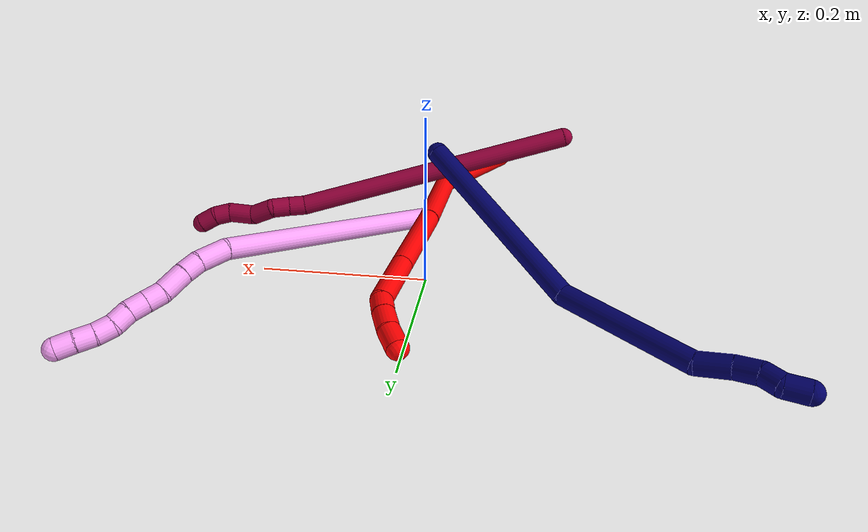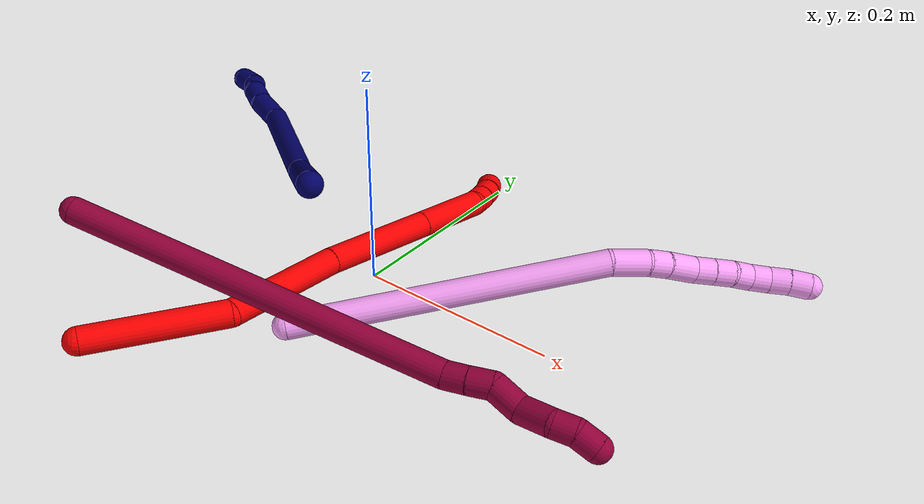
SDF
<sdf version="1.7">
 <world name="default">
  <model name="2">
   <static>0</static>
   <link name="2">
    <collision name="collision-cylinder-e_1_1_4">
     <pose>0.009427 0.008392 -0.062593 -3.00832 0.148171 -1.6769</pose>
     <geometry><cylinder><radius>0.0125</radius><length>0.127705</length></cylinder></geometry>
     <surface>
      <friction><ode><mu>1.16</mu><mu2>1.16</mu2><slip1>0</slip1><slip2>0</slip2></ode></friction>
      <contact><ode><kp>1e+06</kp><kd>1</kd><max_vel>0</max_vel><min_depth>0.001</min_depth></ode></contact>
     </surface>
    </collision>
    <visual name="visual-cylinder-e_1_1_4">
     <pose>0.009427 0.008392 -0.062593 -3.00832 0.148171 -1.6769</pose>
     <geometry><cylinder><radius>0.0125</radius><length>0.127705</length></cylinder></geometry>
     <material><ambient>1 0 0 1</ambient></material>
    </visual>
    <collision name="collision-cylinder-e_2_4_5">
     <pose>0.023382 0.050844 -0.171923 -2.51183 0.078157 -0.238931</pose>
     <geometry><cylinder><radius>0.0125</radius><length>0.116016</length></cylinder></geometry>
     <surface>
      <friction><ode><mu>1.16</mu><mu2>1.16</mu2><slip1>0</slip1><slip2>0</slip2></ode></friction>
      <contact><ode><kp>1e+06</kp><kd>1</kd><max_vel>0</max_vel><min_depth>0.001</min_depth></ode></contact>
     </surface>
    </collision>
    <visual name="visual-cylinder-e_2_4_5">
     <pose>0.023382 0.050844 -0.171923 -2.51183 0.078157 -0.238931</pose>
     <geometry><cylinder><radius>0.0125</radius><length>0.116016</length></cylinder></geometry>
     <material><ambient>1 0 0 1</ambient></material>
    </visual>
    <collision name="collision-cylinder-e_3_5_6">
     <pose>0.030295 0.11444 -0.26682 -2.59145 0.042173 -0.149177</pose>
     <geometry><cylinder><radius>0.0125</radius><length>0.113092</length></cylinder></geometry>
     <surface>
      <friction><ode><mu>1.16</mu><mu2>1.16</mu2><slip1>0</slip1><slip2>0</slip2></ode></friction>
      <contact><ode><kp>1e+06</kp><kd>1</kd><max_vel>0</max_vel><min_depth>0.001</min_depth></ode></contact>
     </surface>
    </collision>
    <visual name="visual-cylinder-e_3_5_6">
     <pose>0.030295 0.11444 -0.26682 -2.59145 0.042173 -0.149177</pose>
     <geometry><cylinder><radius>0.0125</radius><length>0.113092</length></cylinder></geometry>
     <material><ambient>1 0 0 1</ambient></material>
    </visual>
    <collision name="collision-cylinder-e_4_6_7">
     <pose>0.034171 0.162978 -0.345756 -2.58846 0.041204 -0.144932</pose>
     <geometry><cylinder><radius>0.0125</radius><length>0.0724</length></cylinder></geometry>
     <surface>
      <friction><ode><mu>1.16</mu><mu2>1.16</mu2><slip1>0</slip1><slip2>0</slip2></ode></friction>
      <contact><ode><kp>1e+06</kp><kd>1</kd><max_vel>0</max_vel><min_depth>0.001</min_depth></ode></contact>
     </surface>
    </collision>
    <visual name="visual-cylinder-e_4_6_7">
     <pose>0.034171 0.162978 -0.345756 -2.58846 0.041204 -0.144932</pose>
     <geometry><cylinder><radius>0.0125</radius><length>0.0724</length></cylinder></geometry>
     <material><ambient>1 0 0 1</ambient></material>
    </visual>
    <collision name="collision-cylinder-e_5_7_8">
     <pose>0.033943 0.190082 -0.382383 -2.19621 -0.170332 0.330856</pose>
     <geometry><cylinder><radius>0.0125</radius><length>0.020282</length></cylinder></geometry>
     <surface>
      <friction><ode><mu>1.16</mu><mu2>1.16</mu2><slip1>0</slip1><slip2>0</slip2></ode></friction>
      <contact><ode><kp>1e+06</kp><kd>1</kd><max_vel>0</max_vel><min_depth>0.001</min_depth></ode></contact>
     </surface>
    </collision>
    <visual name="visual-cylinder-e_5_7_8">
     <pose>0.033943 0.190082 -0.382383 -2.19621 -0.170332 0.330856</pose>
     <geometry><cylinder><radius>0.0125</radius><length>0.020282</length></cylinder></geometry>
     <material><ambient>1 0 0 1</ambient></material>
    </visual>
    <collision name="collision-cylinder-e_6_8_9">
     <pose>0.029641 0.208846 -0.394522 -2.10367 -0.20573 0.357597</pose>
     <geometry><cylinder><radius>0.0125</radius><length>0.025289</length></cylinder></geometry>
     <surface>
      <friction><ode><mu>1.16</mu><mu2>1.16</mu2><slip1>0</slip1><slip2>0</slip2></ode></friction>
      <contact><ode><kp>1e+06</kp><kd>1</kd><max_vel>0</max_vel><min_depth>0.001</min_depth></ode></contact>
     </surface>
    </collision>
    <visual name="visual-cylinder-e_6_8_9">
     <pose>0.029641 0.208846 -0.394522 -2.10367 -0.20573 0.357597</pose>
     <geometry><cylinder><radius>0.0125</radius><length>0.025289</length></cylinder></geometry>
     <material><ambient>1 0 0 1</ambient></material>
    </visual>
    <collision name="collision-cylinder-e_7_9_2">
     <pose>0.023467 0.230712 -0.405341 -1.95513 -0.288838 0.424882</pose>
     <geometry><cylinder><radius>0.0125</radius><length>0.025215</length></cylinder></geometry>
     <surface>
      <friction><ode><mu>1.16</mu><mu2>1.16</mu2><slip1>0</slip1><slip2>0</slip2></ode></friction>
      <contact><ode><kp>1e+06</kp><kd>1</kd><max_vel>0</max_vel><min_depth>0.001</min_depth></ode></contact>
     </surface>
    </collision>
    <visual name="visual-cylinder-e_7_9_2">
     <pose>0.023467 0.230712 -0.405341 -1.95513 -0.288838 0.424882</pose>
     <geometry><cylinder><radius>0.0125</radius><length>0.025215</length></cylinder></geometry>
     <material><ambient>1 0 0 1</ambient></material>
    </visual>
    <collision name="collision-sphere-2">
     <pose>0.019875 0.241915 -0.409872 0 -0 0</pose>
     <geometry><sphere><radius>0.0125</radius></sphere></geometry>
     <surface>
      <friction><ode><mu>1.16</mu><mu2>1.16</mu2><slip1>0</slip1><slip2>0</slip2></ode></friction>
      <contact><ode><kp>1e+06</kp><kd>1</kd><max_vel>0</max_vel><min_depth>0.001</min_depth></ode></contact>
     </surface>
    </collision>
    <visual name="visual-sphere-2">
     <pose>0.019875 0.241915 -0.409872 0 -0 0</pose>
     <geometry><sphere><radius>0.0125</radius></sphere></geometry>
     <material><ambient>1 0 0 1</ambient></material>
    </visual>
    <collision name="collision-sphere-9">
     <pose>0.027058 0.219508 -0.40081 0 -0 0</pose>
     <geometry><sphere><radius>0.0125</radius></sphere></geometry>
     <surface>
      <friction><ode><mu>1.16</mu><mu2>1.16</mu2><slip1>0</slip1><slip2>0</slip2></ode></friction>
      <contact><ode><kp>1e+06</kp><kd>1</kd><max_vel>0</max_vel><min_depth>0.001</min_depth></ode></contact>
     </surface>
    </collision>
    <visual name="visual-sphere-9">
     <pose>0.027058 0.219508 -0.40081 0 -0 0</pose>
     <geometry><sphere><radius>0.0125</radius></sphere></geometry>
     <material><ambient>1 0 0 1</ambient></material>
    </visual>
    <collision name="collision-sphere-4">
     <pose>0.018853 0.016784 -0.125186 0 -0 0</pose>
     <geometry><sphere><radius>0.0125</radius></sphere></geometry>
     <surface>
      <friction><ode><mu>1.16</mu><mu2>1.16</mu2><slip1>0</slip1><slip2>0</slip2></ode></friction>
      <contact><ode><kp>1e+06</kp><kd>1</kd><max_vel>0</max_vel><min_depth>0.001</min_depth></ode></contact>
     </surface>
    </collision>
    <visual name="visual-sphere-4">
     <pose>0.018853 0.016784 -0.125186 0 -0 0</pose>
     <geometry><sphere><radius>0.0125</radius></sphere></geometry>
     <material><ambient>1 0 0 1</ambient></material>
    </visual>
    <collision name="collision-sphere-1">
     <geometry><sphere><radius>0.0125</radius></sphere></geometry>
     <surface>
      <friction><ode><mu>1.16</mu><mu2>1.16</mu2><slip1>0</slip1><slip2>0</slip2></ode></friction>
      <contact><ode><kp>1e+06</kp><kd>1</kd><max_vel>0</max_vel><min_depth>0.001</min_depth></ode></contact>
     </surface>
    </collision>
    <visual name="visual-sphere-1">
     <geometry><sphere><radius>0.0125</radius></sphere></geometry>
     <material><ambient>1 0 0 1</ambient></material>
    </visual>
    <collision name="collision-sphere-8">
     <pose>0.032224 0.198185 -0.388234 0 -0 0</pose>
     <geometry><sphere><radius>0.0125</radius></sphere></geometry>
     <surface>
      <friction><ode><mu>1.16</mu><mu2>1.16</mu2><slip1>0</slip1><slip2>0</slip2></ode></friction>
      <contact><ode><kp>1e+06</kp><kd>1</kd><max_vel>0</max_vel><min_depth>0.001</min_depth></ode></contact>
     </surface>
    </collision>
    <visual name="visual-sphere-8">
     <pose>0.032224 0.198185 -0.388234 0 -0 0</pose>
     <geometry><sphere><radius>0.0125</radius></sphere></geometry>
     <material><ambient>1 0 0 1</ambient></material>
    </visual>
    <collision name="collision-sphere-5">
     <pose>0.027911 0.084903 -0.21866 0 -0 0</pose>
     <geometry><sphere><radius>0.0125</radius></sphere></geometry>
     <surface>
      <friction><ode><mu>1.16</mu><mu2>1.16</mu2><slip1>0</slip1><slip2>0</slip2></ode></friction>
      <contact><ode><kp>1e+06</kp><kd>1</kd><max_vel>0</max_vel><min_depth>0.001</min_depth></ode></contact>
     </surface>
    </collision>
    <visual name="visual-sphere-5">
     <pose>0.027911 0.084903 -0.21866 0 -0 0</pose>
     <geometry><sphere><radius>0.0125</radius></sphere></geometry>
     <material><ambient>1 0 0 1</ambient></material>
    </visual>
    <collision name="collision-sphere-6">
     <pose>0.032679 0.143976 -0.31498 0 -0 0</pose>
     <geometry><sphere><radius>0.0125</radius></sphere></geometry>
     <surface>
      <friction><ode><mu>1.16</mu><mu2>1.16</mu2><slip1>0</slip1><slip2>0</slip2></ode></friction>
      <contact><ode><kp>1e+06</kp><kd>1</kd><max_vel>0</max_vel><min_depth>0.001</min_depth></ode></contact>
     </surface>
    </collision>
    <visual name="visual-sphere-6">
     <pose>0.032679 0.143976 -0.31498 0 -0 0</pose>
     <geometry><sphere><radius>0.0125</radius></sphere></geometry>
     <material><ambient>1 0 0 1</ambient></material>
    </visual>
    <collision name="collision-sphere-7">
     <pose>0.035662 0.18198 -0.376532 0 -0 0</pose>
     <geometry><sphere><radius>0.0125</radius></sphere></geometry>
     <surface>
      <friction><ode><mu>1.16</mu><mu2>1.16</mu2><slip1>0</slip1><slip2>0</slip2></ode></friction>
      <contact><ode><kp>1e+06</kp><kd>1</kd><max_vel>0</max_vel><min_depth>0.001</min_depth></ode></contact>
     </surface>
    </collision>
    <visual name="visual-sphere-7">
     <pose>0.035662 0.18198 -0.376532 0 -0 0</pose>
     <geometry><sphere><radius>0.0125</radius></sphere></geometry>
     <material><ambient>1 0 0 1</ambient></material>
    </visual>
    <inertial>
     <pose>0.023693 0.093333 -0.222201 0 -0 0</pose>
     <mass>0.5</mass>
     <inertia>
      <ixx>4.8e-05</ixx>
      <ixy>0</ixy>
      <ixz>0</ixz>
      <iyy>-0.000428</iyy>
      <iyz>0</iyz>
      <izz>-0.000265</izz>
     </inertia>
    </inertial>
   </link>
   <pose>-0.068901 -0.287499 0.061838 0.213977 -1.38481 0.671209</pose>
  </model>
  <model name="4">
   <static>0</static>
   <link name="4">
    <collision name="collision-cylinder-e_1_1_4">
     <pose>0.029462 0.093714 0.108887 -0.710648 0.202272 -0.075279</pose>
     <geometry><cylinder><radius>0.0125</radius><length>0.293302</length></cylinder></geometry>
     <surface>
      <friction><ode><mu>1.16</mu><mu2>1.16</mu2><slip1>0</slip1><slip2>0</slip2></ode></friction>
      <contact><ode><kp>1e+06</kp><kd>1</kd><max_vel>0</max_vel><min_depth>0.001</min_depth></ode></contact>
     </surface>
    </collision>
    <visual name="visual-cylinder-e_1_1_4">
     <pose>0.029462 0.093714 0.108887 -0.710648 0.202272 -0.075279</pose>
     <geometry><cylinder><radius>0.0125</radius><length>0.293302</length></cylinder></geometry>
     <material><ambient>1 0.65098 0.996078 1</ambient></material>
    </visual>
    <collision name="collision-cylinder-e_2_4_5">
     <pose>0.066325 0.199395 0.228313 -0.848726 0.434549 -0.198828</pose>
     <geometry><cylinder><radius>0.0125</radius><length>0.035162</length></cylinder></geometry>
     <surface>
      <friction><ode><mu>1.16</mu><mu2>1.16</mu2><slip1>0</slip1><slip2>0</slip2></ode></friction>
      <contact><ode><kp>1e+06</kp><kd>1</kd><max_vel>0</max_vel><min_depth>0.001</min_depth></ode></contact>
     </surface>
    </collision>
    <visual name="visual-cylinder-e_2_4_5">
     <pose>0.066325 0.199395 0.228313 -0.848726 0.434549 -0.198828</pose>
     <geometry><cylinder><radius>0.0125</radius><length>0.035162</length></cylinder></geometry>
     <material><ambient>1 0.65098 0.996078 1</ambient></material>
    </visual>
    <collision name="collision-cylinder-e_3_5_6">
     <pose>0.079155 0.219052 0.243186 -1.05768 0.551381 -0.327661</pose>
     <geometry><cylinder><radius>0.0125</radius><length>0.020725</length></cylinder></geometry>
     <surface>
      <friction><ode><mu>1.16</mu><mu2>1.16</mu2><slip1>0</slip1><slip2>0</slip2></ode></friction>
      <contact><ode><kp>1e+06</kp><kd>1</kd><max_vel>0</max_vel><min_depth>0.001</min_depth></ode></contact>
     </surface>
    </collision>
    <visual name="visual-cylinder-e_3_5_6">
     <pose>0.079155 0.219052 0.243186 -1.05768 0.551381 -0.327661</pose>
     <geometry><cylinder><radius>0.0125</radius><length>0.020725</length></cylinder></geometry>
     <material><ambient>1 0.65098 0.996078 1</ambient></material>
    </visual>
    <collision name="collision-cylinder-e_4_6_7">
     <pose>0.09338 0.238165 0.252627 -1.15031 0.612743 -0.404527</pose>
     <geometry><cylinder><radius>0.0125</radius><length>0.030591</length></cylinder></geometry>
     <surface>
      <friction><ode><mu>1.16</mu><mu2>1.16</mu2><slip1>0</slip1><slip2>0</slip2></ode></friction>
      <contact><ode><kp>1e+06</kp><kd>1</kd><max_vel>0</max_vel><min_depth>0.001</min_depth></ode></contact>
     </surface>
    </collision>
    <visual name="visual-cylinder-e_4_6_7">
     <pose>0.09338 0.238165 0.252627 -1.15031 0.612743 -0.404527</pose>
     <geometry><cylinder><radius>0.0125</radius><length>0.030591</length></cylinder></geometry>
     <material><ambient>1 0.65098 0.996078 1</ambient></material>
    </visual>
    <collision name="collision-cylinder-e_5_7_8">
     <pose>0.10729 0.256202 0.263402 -0.862301 0.530863 -0.248814</pose>
     <geometry><cylinder><radius>0.0125</radius><length>0.0202</length></cylinder></geometry>
     <surface>
      <friction><ode><mu>1.16</mu><mu2>1.16</mu2><slip1>0</slip1><slip2>0</slip2></ode></friction>
      <contact><ode><kp>1e+06</kp><kd>1</kd><max_vel>0</max_vel><min_depth>0.001</min_depth></ode></contact>
     </surface>
    </collision>
    <visual name="visual-cylinder-e_5_7_8">
     <pose>0.10729 0.256202 0.263402 -0.862301 0.530863 -0.248814</pose>
     <geometry><cylinder><radius>0.0125</radius><length>0.0202</length></cylinder></geometry>
     <material><ambient>1 0.65098 0.996078 1</ambient></material>
    </visual>
    <collision name="collision-cylinder-e_6_8_9">
     <pose>0.117531 0.26943 0.274554 -0.878442 0.538019 -0.257622</pose>
     <geometry><cylinder><radius>0.0125</radius><length>0.020011</length></cylinder></geometry>
     <surface>
      <friction><ode><mu>1.16</mu><mu2>1.16</mu2><slip1>0</slip1><slip2>0</slip2></ode></friction>
      <contact><ode><kp>1e+06</kp><kd>1</kd><max_vel>0</max_vel><min_depth>0.001</min_depth></ode></contact>
     </surface>
    </collision>
    <visual name="visual-cylinder-e_6_8_9">
     <pose>0.117531 0.26943 0.274554 -0.878442 0.538019 -0.257622</pose>
     <geometry><cylinder><radius>0.0125</radius><length>0.020011</length></cylinder></geometry>
     <material><ambient>1 0.65098 0.996078 1</ambient></material>
    </visual>
    <collision name="collision-cylinder-e_7_9_10">
     <pose>0.128496 0.283408 0.283466 -1.13523 0.623145 -0.405069</pose>
     <geometry><cylinder><radius>0.0125</radius><length>0.020006</length></cylinder></geometry>
     <surface>
      <friction><ode><mu>1.16</mu><mu2>1.16</mu2><slip1>0</slip1><slip2>0</slip2></ode></friction>
      <contact><ode><kp>1e+06</kp><kd>1</kd><max_vel>0</max_vel><min_depth>0.001</min_depth></ode></contact>
     </surface>
    </collision>
    <visual name="visual-cylinder-e_7_9_10">
     <pose>0.128496 0.283408 0.283466 -1.13523 0.623145 -0.405069</pose>
     <geometry><cylinder><radius>0.0125</radius><length>0.020006</length></cylinder></geometry>
     <material><ambient>1 0.65098 0.996078 1</ambient></material>
    </visual>
    <collision name="collision-cylinder-e_8_10_11">
     <pose>0.139593 0.296751 0.292943 -0.77955 0.553812 -0.232448</pose>
     <geometry><cylinder><radius>0.0125</radius><length>0.020002</length></cylinder></geometry>
     <surface>
      <friction><ode><mu>1.16</mu><mu2>1.16</mu2><slip1>0</slip1><slip2>0</slip2></ode></friction>
      <contact><ode><kp>1e+06</kp><kd>1</kd><max_vel>0</max_vel><min_depth>0.001</min_depth></ode></contact>
     </surface>
    </collision>
    <visual name="visual-cylinder-e_8_10_11">
     <pose>0.139593 0.296751 0.292943 -0.77955 0.553812 -0.232448</pose>
     <geometry><cylinder><radius>0.0125</radius><length>0.020002</length></cylinder></geometry>
     <material><ambient>1 0.65098 0.996078 1</ambient></material>
    </visual>
    <collision name="collision-cylinder-e_9_11_12">
     <pose>0.149545 0.307795 0.306228 -0.610702 0.488437 -0.156774</pose>
     <geometry><cylinder><radius>0.0125</radius><length>0.02</length></cylinder></geometry>
     <surface>
      <friction><ode><mu>1.16</mu><mu2>1.16</mu2><slip1>0</slip1><slip2>0</slip2></ode></friction>
      <contact><ode><kp>1e+06</kp><kd>1</kd><max_vel>0</max_vel><min_depth>0.001</min_depth></ode></contact>
     </surface>
    </collision>
    <visual name="visual-cylinder-e_9_11_12">
     <pose>0.149545 0.307795 0.306228 -0.610702 0.488437 -0.156774</pose>
     <geometry><cylinder><radius>0.0125</radius><length>0.02</length></cylinder></geometry>
     <material><ambient>1 0.65098 0.996078 1</ambient></material>
    </visual>
    <collision name="collision-cylinder-e_10_12_2">
     <pose>0.159735 0.317347 0.320508 -0.567164 0.581941 -0.174112</pose>
     <geometry><cylinder><radius>0.0125</radius><length>0.020001</length></cylinder></geometry>
     <surface>
      <friction><ode><mu>1.16</mu><mu2>1.16</mu2><slip1>0</slip1><slip2>0</slip2></ode></friction>
      <contact><ode><kp>1e+06</kp><kd>1</kd><max_vel>0</max_vel><min_depth>0.001</min_depth></ode></contact>
     </surface>
    </collision>
    <visual name="visual-cylinder-e_10_12_2">
     <pose>0.159735 0.317347 0.320508 -0.567164 0.581941 -0.174112</pose>
     <geometry><cylinder><radius>0.0125</radius><length>0.020001</length></cylinder></geometry>
     <material><ambient>1 0.65098 0.996078 1</ambient></material>
    </visual>
    <collision name="collision-sphere-2">
     <pose>0.165231 0.321835 0.327555 0 -0 0</pose>
     <geometry><sphere><radius>0.0125</radius></sphere></geometry>
     <surface>
      <friction><ode><mu>1.16</mu><mu2>1.16</mu2><slip1>0</slip1><slip2>0</slip2></ode></friction>
      <contact><ode><kp>1e+06</kp><kd>1</kd><max_vel>0</max_vel><min_depth>0.001</min_depth></ode></contact>
     </surface>
    </collision>
    <visual name="visual-sphere-2">
     <pose>0.165231 0.321835 0.327555 0 -0 0</pose>
     <geometry><sphere><radius>0.0125</radius></sphere></geometry>
     <material><ambient>1 0.65098 0.996078 1</ambient></material>
    </visual>
    <collision name="collision-sphere-12">
     <pose>0.154238 0.312859 0.313462 0 -0 0</pose>
     <geometry><sphere><radius>0.0125</radius></sphere></geometry>
     <surface>
      <friction><ode><mu>1.16</mu><mu2>1.16</mu2><slip1>0</slip1><slip2>0</slip2></ode></friction>
      <contact><ode><kp>1e+06</kp><kd>1</kd><max_vel>0</max_vel><min_depth>0.001</min_depth></ode></contact>
     </surface>
    </collision>
    <visual name="visual-sphere-12">
     <pose>0.154238 0.312859 0.313462 0 -0 0</pose>
     <geometry><sphere><radius>0.0125</radius></sphere></geometry>
     <material><ambient>1 0.65098 0.996078 1</ambient></material>
    </visual>
    <collision name="collision-sphere-11">
     <pose>0.144853 0.302731 0.298993 0 -0 0</pose>
     <geometry><sphere><radius>0.0125</radius></sphere></geometry>
     <surface>
      <friction><ode><mu>1.16</mu><mu2>1.16</mu2><slip1>0</slip1><slip2>0</slip2></ode></friction>
      <contact><ode><kp>1e+06</kp><kd>1</kd><max_vel>0</max_vel><min_depth>0.001</min_depth></ode></contact>
     </surface>
    </collision>
    <visual name="visual-sphere-11">
     <pose>0.144853 0.302731 0.298993 0 -0 0</pose>
     <geometry><sphere><radius>0.0125</radius></sphere></geometry>
     <material><ambient>1 0.65098 0.996078 1</ambient></material>
    </visual>
    <collision name="collision-sphere-10">
     <pose>0.134333 0.290772 0.286893 0 -0 0</pose>
     <geometry><sphere><radius>0.0125</radius></sphere></geometry>
     <surface>
      <friction><ode><mu>1.16</mu><mu2>1.16</mu2><slip1>0</slip1><slip2>0</slip2></ode></friction>
      <contact><ode><kp>1e+06</kp><kd>1</kd><max_vel>0</max_vel><min_depth>0.001</min_depth></ode></contact>
     </surface>
    </collision>
    <visual name="visual-sphere-10">
     <pose>0.134333 0.290772 0.286893 0 -0 0</pose>
     <geometry><sphere><radius>0.0125</radius></sphere></geometry>
     <material><ambient>1 0.65098 0.996078 1</ambient></material>
    </visual>
    <collision name="collision-sphere-9">
     <pose>0.122658 0.276043 0.280039 0 -0 0</pose>
     <geometry><sphere><radius>0.0125</radius></sphere></geometry>
     <surface>
      <friction><ode><mu>1.16</mu><mu2>1.16</mu2><slip1>0</slip1><slip2>0</slip2></ode></friction>
      <contact><ode><kp>1e+06</kp><kd>1</kd><max_vel>0</max_vel><min_depth>0.001</min_depth></ode></contact>
     </surface>
    </collision>
    <visual name="visual-sphere-9">
     <pose>0.122658 0.276043 0.280039 0 -0 0</pose>
     <geometry><sphere><radius>0.0125</radius></sphere></geometry>
     <material><ambient>1 0.65098 0.996078 1</ambient></material>
    </visual>
    <collision name="collision-sphere-4">
     <pose>0.058923 0.187428 0.217773 0 -0 0</pose>
     <geometry><sphere><radius>0.0125</radius></sphere></geometry>
     <surface>
      <friction><ode><mu>1.16</mu><mu2>1.16</mu2><slip1>0</slip1><slip2>0</slip2></ode></friction>
      <contact><ode><kp>1e+06</kp><kd>1</kd><max_vel>0</max_vel><min_depth>0.001</min_depth></ode></contact>
     </surface>
    </collision>
    <visual name="visual-sphere-4">
     <pose>0.058923 0.187428 0.217773 0 -0 0</pose>
     <geometry><sphere><radius>0.0125</radius></sphere></geometry>
     <material><ambient>1 0.65098 0.996078 1</ambient></material>
    </visual>
    <collision name="collision-sphere-1">
     <geometry><sphere><radius>0.0125</radius></sphere></geometry>
     <surface>
      <friction><ode><mu>1.16</mu><mu2>1.16</mu2><slip1>0</slip1><slip2>0</slip2></ode></friction>
      <contact><ode><kp>1e+06</kp><kd>1</kd><max_vel>0</max_vel><min_depth>0.001</min_depth></ode></contact>
     </surface>
    </collision>
    <visual name="visual-sphere-1">
     <geometry><sphere><radius>0.0125</radius></sphere></geometry>
     <material><ambient>1 0.65098 0.996078 1</ambient></material>
    </visual>
    <collision name="collision-sphere-8">
     <pose>0.112404 0.262816 0.26907 0 -0 0</pose>
     <geometry><sphere><radius>0.0125</radius></sphere></geometry>
     <surface>
      <friction><ode><mu>1.16</mu><mu2>1.16</mu2><slip1>0</slip1><slip2>0</slip2></ode></friction>
      <contact><ode><kp>1e+06</kp><kd>1</kd><max_vel>0</max_vel><min_depth>0.001</min_depth></ode></contact>
     </surface>
    </collision>
    <visual name="visual-sphere-8">
     <pose>0.112404 0.262816 0.26907 0 -0 0</pose>
     <geometry><sphere><radius>0.0125</radius></sphere></geometry>
     <material><ambient>1 0.65098 0.996078 1</ambient></material>
    </visual>
    <collision name="collision-sphere-5">
     <pose>0.073726 0.211362 0.238853 0 -0 0</pose>
     <geometry><sphere><radius>0.0125</radius></sphere></geometry>
     <surface>
      <friction><ode><mu>1.16</mu><mu2>1.16</mu2><slip1>0</slip1><slip2>0</slip2></ode></friction>
      <contact><ode><kp>1e+06</kp><kd>1</kd><max_vel>0</max_vel><min_depth>0.001</min_depth></ode></contact>
     </surface>
    </collision>
    <visual name="visual-sphere-5">
     <pose>0.073726 0.211362 0.238853 0 -0 0</pose>
     <geometry><sphere><radius>0.0125</radius></sphere></geometry>
     <material><ambient>1 0.65098 0.996078 1</ambient></material>
    </visual>
    <collision name="collision-sphere-6">
     <pose>0.084583 0.226742 0.247519 0 -0 0</pose>
     <geometry><sphere><radius>0.0125</radius></sphere></geometry>
     <surface>
      <friction><ode><mu>1.16</mu><mu2>1.16</mu2><slip1>0</slip1><slip2>0</slip2></ode></friction>
      <contact><ode><kp>1e+06</kp><kd>1</kd><max_vel>0</max_vel><min_depth>0.001</min_depth></ode></contact>
     </surface>
    </collision>
    <visual name="visual-sphere-6">
     <pose>0.084583 0.226742 0.247519 0 -0 0</pose>
     <geometry><sphere><radius>0.0125</radius></sphere></geometry>
     <material><ambient>1 0.65098 0.996078 1</ambient></material>
    </visual>
    <collision name="collision-sphere-7">
     <pose>0.102177 0.249588 0.257735 0 -0 0</pose>
     <geometry><sphere><radius>0.0125</radius></sphere></geometry>
     <surface>
      <friction><ode><mu>1.16</mu><mu2>1.16</mu2><slip1>0</slip1><slip2>0</slip2></ode></friction>
      <contact><ode><kp>1e+06</kp><kd>1</kd><max_vel>0</max_vel><min_depth>0.001</min_depth></ode></contact>
     </surface>
    </collision>
    <visual name="visual-sphere-7">
     <pose>0.102177 0.249588 0.257735 0 -0 0</pose>
     <geometry><sphere><radius>0.0125</radius></sphere></geometry>
     <material><ambient>1 0.65098 0.996078 1</ambient></material>
    </visual>
    <inertial>
     <pose>0.063076 0.161997 0.175226 0 -0 0</pose>
     <mass>0.5</mass>
     <inertia>
      <ixx>0.001934</ixx>
      <ixy>0</ixy>
      <ixz>0</ixz>
      <iyy>0.001497</iyy>
      <iyz>0</iyz>
      <izz>-0.001772</izz>
     </inertia>
    </inertial>
   </link>
   <pose>0.015307 -0.133595 0.025794 -0.099006 1.10141 0.027024</pose>
  </model>
  <model name="7">
   <static>0</static>
   <link name="7">
    <collision name="collision-cylinder-e_1_1_4">
     <pose>-0.048902 0.003963 -0.106611 -3.10444 -0.429797 2.97177</pose>
     <geometry><cylinder><radius>0.0125</radius><length>0.234717</length></cylinder></geometry>
     <surface>
      <friction><ode><mu>1.16</mu><mu2>1.16</mu2><slip1>0</slip1><slip2>0</slip2></ode></friction>
      <contact><ode><kp>1e+06</kp><kd>1</kd><max_vel>0</max_vel><min_depth>0.001</min_depth></ode></contact>
     </surface>
    </collision>
    <visual name="visual-cylinder-e_1_1_4">
     <pose>-0.048902 0.003963 -0.106611 -3.10444 -0.429797 2.97177</pose>
     <geometry><cylinder><radius>0.0125</radius><length>0.234717</length></cylinder></geometry>
     <material><ambient>0.003922 0 0.403922 1</ambient></material>
    </visual>
    <collision name="collision-cylinder-e_2_4_5">
     <pose>-0.131003 0.039235 -0.277237 -2.68671 -0.435985 1.52695</pose>
     <geometry><cylinder><radius>0.0125</radius><length>0.157231</length></cylinder></geometry>
     <surface>
      <friction><ode><mu>1.16</mu><mu2>1.16</mu2><slip1>0</slip1><slip2>0</slip2></ode></friction>
      <contact><ode><kp>1e+06</kp><kd>1</kd><max_vel>0</max_vel><min_depth>0.001</min_depth></ode></contact>
     </surface>
    </collision>
    <visual name="visual-cylinder-e_2_4_5">
     <pose>-0.131003 0.039235 -0.277237 -2.68671 -0.435985 1.52695</pose>
     <geometry><cylinder><radius>0.0125</radius><length>0.157231</length></cylinder></geometry>
     <material><ambient>0.003922 0 0.403922 1</ambient></material>
    </visual>
    <collision name="collision-cylinder-e_3_5_6">
     <pose>-0.174925 0.082111 -0.350595 -2.25019 -0.624741 1.1888</pose>
     <geometry><cylinder><radius>0.0125</radius><length>0.036664</length></cylinder></geometry>
     <surface>
      <friction><ode><mu>1.16</mu><mu2>1.16</mu2><slip1>0</slip1><slip2>0</slip2></ode></friction>
      <contact><ode><kp>1e+06</kp><kd>1</kd><max_vel>0</max_vel><min_depth>0.001</min_depth></ode></contact>
     </surface>
    </collision>
    <visual name="visual-cylinder-e_3_5_6">
     <pose>-0.174925 0.082111 -0.350595 -2.25019 -0.624741 1.1888</pose>
     <geometry><cylinder><radius>0.0125</radius><length>0.036664</length></cylinder></geometry>
     <material><ambient>0.003922 0 0.403922 1</ambient></material>
    </visual>
    <collision name="collision-cylinder-e_4_6_7">
     <pose>-0.191466 0.101625 -0.368546 -2.39615 -0.46101 1.08114</pose>
     <geometry><cylinder><radius>0.0125</radius><length>0.026161</length></cylinder></geometry>
     <surface>
      <friction><ode><mu>1.16</mu><mu2>1.16</mu2><slip1>0</slip1><slip2>0</slip2></ode></friction>
      <contact><ode><kp>1e+06</kp><kd>1</kd><max_vel>0</max_vel><min_depth>0.001</min_depth></ode></contact>
     </surface>
    </collision>
    <visual name="visual-cylinder-e_4_6_7">
     <pose>-0.191466 0.101625 -0.368546 -2.39615 -0.46101 1.08114</pose>
     <geometry><cylinder><radius>0.0125</radius><length>0.026161</length></cylinder></geometry>
     <material><ambient>0.003922 0 0.403922 1</ambient></material>
    </visual>
    <collision name="collision-cylinder-e_5_7_8">
     <pose>-0.200412 0.113484 -0.386152 -2.73142 -0.308552 1.28394</pose>
     <geometry><cylinder><radius>0.0125</radius><length>0.020595</length></cylinder></geometry>
     <surface>
      <friction><ode><mu>1.16</mu><mu2>1.16</mu2><slip1>0</slip1><slip2>0</slip2></ode></friction>
      <contact><ode><kp>1e+06</kp><kd>1</kd><max_vel>0</max_vel><min_depth>0.001</min_depth></ode></contact>
     </surface>
    </collision>
    <visual name="visual-cylinder-e_5_7_8">
     <pose>-0.200412 0.113484 -0.386152 -2.73142 -0.308552 1.28394</pose>
     <geometry><cylinder><radius>0.0125</radius><length>0.020595</length></cylinder></geometry>
     <material><ambient>0.003922 0 0.403922 1</ambient></material>
    </visual>
    <collision name="collision-cylinder-e_6_8_2">
     <pose>-0.21209 0.123026 -0.401995 -2.45336 -0.767489 1.68976</pose>
     <geometry><cylinder><radius>0.0125</radius><length>0.024631</length></cylinder></geometry>
     <surface>
      <friction><ode><mu>1.16</mu><mu2>1.16</mu2><slip1>0</slip1><slip2>0</slip2></ode></friction>
      <contact><ode><kp>1e+06</kp><kd>1</kd><max_vel>0</max_vel><min_depth>0.001</min_depth></ode></contact>
     </surface>
    </collision>
    <visual name="visual-cylinder-e_6_8_2">
     <pose>-0.21209 0.123026 -0.401995 -2.45336 -0.767489 1.68976</pose>
     <geometry><cylinder><radius>0.0125</radius><length>0.024631</length></cylinder></geometry>
     <material><ambient>0.003922 0 0.403922 1</ambient></material>
    </visual>
    <collision name="collision-sphere-2">
     <pose>-0.220642 0.128656 -0.40884 0 -0 0</pose>
     <geometry><sphere><radius>0.0125</radius></sphere></geometry>
     <surface>
      <friction><ode><mu>1.16</mu><mu2>1.16</mu2><slip1>0</slip1><slip2>0</slip2></ode></friction>
      <contact><ode><kp>1e+06</kp><kd>1</kd><max_vel>0</max_vel><min_depth>0.001</min_depth></ode></contact>
     </surface>
    </collision>
    <visual name="visual-sphere-2">
     <pose>-0.220642 0.128656 -0.40884 0 -0 0</pose>
     <geometry><sphere><radius>0.0125</radius></sphere></geometry>
     <material><ambient>0.003922 0 0.403922 1</ambient></material>
    </visual>
    <collision name="collision-sphere-4">
     <pose>-0.097803 0.007925 -0.213222 0 -0 0</pose>
     <geometry><sphere><radius>0.0125</radius></sphere></geometry>
     <surface>
      <friction><ode><mu>1.16</mu><mu2>1.16</mu2><slip1>0</slip1><slip2>0</slip2></ode></friction>
      <contact><ode><kp>1e+06</kp><kd>1</kd><max_vel>0</max_vel><min_depth>0.001</min_depth></ode></contact>
     </surface>
    </collision>
    <visual name="visual-sphere-4">
     <pose>-0.097803 0.007925 -0.213222 0 -0 0</pose>
     <geometry><sphere><radius>0.0125</radius></sphere></geometry>
     <material><ambient>0.003922 0 0.403922 1</ambient></material>
    </visual>
    <collision name="collision-sphere-1">
     <geometry><sphere><radius>0.0125</radius></sphere></geometry>
     <surface>
      <friction><ode><mu>1.16</mu><mu2>1.16</mu2><slip1>0</slip1><slip2>0</slip2></ode></friction>
      <contact><ode><kp>1e+06</kp><kd>1</kd><max_vel>0</max_vel><min_depth>0.001</min_depth></ode></contact>
     </surface>
    </collision>
    <visual name="visual-sphere-1">
     <geometry><sphere><radius>0.0125</radius></sphere></geometry>
     <material><ambient>0.003922 0 0.403922 1</ambient></material>
    </visual>
    <collision name="collision-sphere-8">
     <pose>-0.203539 0.117397 -0.395149 0 -0 0</pose>
     <geometry><sphere><radius>0.0125</radius></sphere></geometry>
     <surface>
      <friction><ode><mu>1.16</mu><mu2>1.16</mu2><slip1>0</slip1><slip2>0</slip2></ode></friction>
      <contact><ode><kp>1e+06</kp><kd>1</kd><max_vel>0</max_vel><min_depth>0.001</min_depth></ode></contact>
     </surface>
    </collision>
    <visual name="visual-sphere-8">
     <pose>-0.203539 0.117397 -0.395149 0 -0 0</pose>
     <geometry><sphere><radius>0.0125</radius></sphere></geometry>
     <material><ambient>0.003922 0 0.403922 1</ambient></material>
    </visual>
    <collision name="collision-sphere-5">
     <pose>-0.164203 0.070544 -0.341252 0 -0 0</pose>
     <geometry><sphere><radius>0.0125</radius></sphere></geometry>
     <surface>
      <friction><ode><mu>1.16</mu><mu2>1.16</mu2><slip1>0</slip1><slip2>0</slip2></ode></friction>
      <contact><ode><kp>1e+06</kp><kd>1</kd><max_vel>0</max_vel><min_depth>0.001</min_depth></ode></contact>
     </surface>
    </collision>
    <visual name="visual-sphere-5">
     <pose>-0.164203 0.070544 -0.341252 0 -0 0</pose>
     <geometry><sphere><radius>0.0125</radius></sphere></geometry>
     <material><ambient>0.003922 0 0.403922 1</ambient></material>
    </visual>
    <collision name="collision-sphere-6">
     <pose>-0.185647 0.093679 -0.359938 0 -0 0</pose>
     <geometry><sphere><radius>0.0125</radius></sphere></geometry>
     <surface>
      <friction><ode><mu>1.16</mu><mu2>1.16</mu2><slip1>0</slip1><slip2>0</slip2></ode></friction>
      <contact><ode><kp>1e+06</kp><kd>1</kd><max_vel>0</max_vel><min_depth>0.001</min_depth></ode></contact>
     </surface>
    </collision>
    <visual name="visual-sphere-6">
     <pose>-0.185647 0.093679 -0.359938 0 -0 0</pose>
     <geometry><sphere><radius>0.0125</radius></sphere></geometry>
     <material><ambient>0.003922 0 0.403922 1</ambient></material>
    </visual>
    <collision name="collision-sphere-7">
     <pose>-0.197285 0.109572 -0.377154 0 -0 0</pose>
     <geometry><sphere><radius>0.0125</radius></sphere></geometry>
     <surface>
      <friction><ode><mu>1.16</mu><mu2>1.16</mu2><slip1>0</slip1><slip2>0</slip2></ode></friction>
      <contact><ode><kp>1e+06</kp><kd>1</kd><max_vel>0</max_vel><min_depth>0.001</min_depth></ode></contact>
     </surface>
    </collision>
    <visual name="visual-sphere-7">
     <pose>-0.197285 0.109572 -0.377154 0 -0 0</pose>
     <geometry><sphere><radius>0.0125</radius></sphere></geometry>
     <material><ambient>0.003922 0 0.403922 1</ambient></material>
    </visual>
    <inertial>
     <pose>-0.1057 0.036271 -0.217928 0 -0 0</pose>
     <mass>0.5</mass>
     <inertia>
      <ixx>-0.0005</ixx>
      <ixy>0</ixy>
      <ixz>0</ixz>
      <iyy>0.001608</iyy>
      <iyz>0</iyz>
      <izz>0.000392</izz>
     </inertia>
    </inertial>
   </link>
   <pose>-0.003934 -0.073926 0.135794 1.16228 -0.353382 0.5252</pose>
  </model>
  <model name="8">
   <static>0</static>
   <link name="8">
    <collision name="collision-cylinder-e_1_1_4">
     <pose>0.111146 0.041636 -0.13282 -2.83782 0.673826 -2.31761</pose>
     <geometry><cylinder><radius>0.0125</radius><length>0.356247</length></cylinder></geometry>
     <surface>
      <friction><ode><mu>1.16</mu><mu2>1.16</mu2><slip1>0</slip1><slip2>0</slip2></ode></friction>
      <contact><ode><kp>1e+06</kp><kd>1</kd><max_vel>0</max_vel><min_depth>0.001</min_depth></ode></contact>
     </surface>
    </collision>
    <visual name="visual-cylinder-e_1_1_4">
     <pose>0.111146 0.041636 -0.13282 -2.83782 0.673826 -2.31761</pose>
     <geometry><cylinder><radius>0.0125</radius><length>0.356247</length></cylinder></geometry>
     <material><ambient>0.584314 0 0.227451 1</ambient></material>
    </visual>
    <collision name="collision-cylinder-e_2_4_5">
     <pose>0.229997 0.084156 -0.272445 -3.01239 0.843163 -2.85508</pose>
     <geometry><cylinder><radius>0.0125</radius><length>0.020638</length></cylinder></geometry>
     <surface>
      <friction><ode><mu>1.16</mu><mu2>1.16</mu2><slip1>0</slip1><slip2>0</slip2></ode></friction>
      <contact><ode><kp>1e+06</kp><kd>1</kd><max_vel>0</max_vel><min_depth>0.001</min_depth></ode></contact>
     </surface>
    </collision>
    <visual name="visual-cylinder-e_2_4_5">
     <pose>0.229997 0.084156 -0.272445 -3.01239 0.843163 -2.85508</pose>
     <geometry><cylinder><radius>0.0125</radius><length>0.020638</length></cylinder></geometry>
     <material><ambient>0.584314 0 0.227451 1</ambient></material>
    </visual>
    <collision name="collision-cylinder-e_3_5_6">
     <pose>0.246249 0.086571 -0.286162 -2.92368 0.879126 -2.68447</pose>
     <geometry><cylinder><radius>0.0125</radius><length>0.022195</length></cylinder></geometry>
     <surface>
      <friction><ode><mu>1.16</mu><mu2>1.16</mu2><slip1>0</slip1><slip2>0</slip2></ode></friction>
      <contact><ode><kp>1e+06</kp><kd>1</kd><max_vel>0</max_vel><min_depth>0.001</min_depth></ode></contact>
     </surface>
    </collision>
    <visual name="visual-cylinder-e_3_5_6">
     <pose>0.246249 0.086571 -0.286162 -2.92368 0.879126 -2.68447</pose>
     <geometry><cylinder><radius>0.0125</radius><length>0.022195</length></cylinder></geometry>
     <material><ambient>0.584314 0 0.227451 1</ambient></material>
    </visual>
    <collision name="collision-cylinder-e_4_6_7">
     <pose>0.259823 0.091229 -0.306003 -2.90422 0.361254 -1.98465</pose>
     <geometry><cylinder><radius>0.0125</radius><length>0.028442</length></cylinder></geometry>
     <surface>
      <friction><ode><mu>1.16</mu><mu2>1.16</mu2><slip1>0</slip1><slip2>0</slip2></ode></friction>
      <contact><ode><kp>1e+06</kp><kd>1</kd><max_vel>0</max_vel><min_depth>0.001</min_depth></ode></contact>
     </surface>
    </collision>
    <visual name="visual-cylinder-e_4_6_7">
     <pose>0.259823 0.091229 -0.306003 -2.90422 0.361254 -1.98465</pose>
     <geometry><cylinder><radius>0.0125</radius><length>0.028442</length></cylinder></geometry>
     <material><ambient>0.584314 0 0.227451 1</ambient></material>
    </visual>
    <collision name="collision-cylinder-e_5_7_8">
     <pose>0.274045 0.09198 -0.33136 2.95254 0.628507 2.57394</pose>
     <geometry><cylinder><radius>0.0125</radius><length>0.031282</length></cylinder></geometry>
     <surface>
      <friction><ode><mu>1.16</mu><mu2>1.16</mu2><slip1>0</slip1><slip2>0</slip2></ode></friction>
      <contact><ode><kp>1e+06</kp><kd>1</kd><max_vel>0</max_vel><min_depth>0.001</min_depth></ode></contact>
     </surface>
    </collision>
    <visual name="visual-cylinder-e_5_7_8">
     <pose>0.274045 0.09198 -0.33136 2.95254 0.628507 2.57394</pose>
     <geometry><cylinder><radius>0.0125</radius><length>0.031282</length></cylinder></geometry>
     <material><ambient>0.584314 0 0.227451 1</ambient></material>
    </visual>
    <collision name="collision-cylinder-e_6_8_9">
     <pose>0.289946 0.091731 -0.351031 -2.85579 0.726145 -2.41753</pose>
     <geometry><cylinder><radius>0.0125</radius><length>0.020196</length></cylinder></geometry>
     <surface>
      <friction><ode><mu>1.16</mu><mu2>1.16</mu2><slip1>0</slip1><slip2>0</slip2></ode></friction>
      <contact><ode><kp>1e+06</kp><kd>1</kd><max_vel>0</max_vel><min_depth>0.001</min_depth></ode></contact>
     </surface>
    </collision>
    <visual name="visual-cylinder-e_6_8_9">
     <pose>0.289946 0.091731 -0.351031 -2.85579 0.726145 -2.41753</pose>
     <geometry><cylinder><radius>0.0125</radius><length>0.020196</length></cylinder></geometry>
     <material><ambient>0.584314 0 0.227451 1</ambient></material>
    </visual>
    <collision name="collision-cylinder-e_7_9_2">
     <pose>0.301036 0.098044 -0.366849 -2.68755 0.430863 -1.51667</pose>
     <geometry><cylinder><radius>0.0125</radius><length>0.021</length></cylinder></geometry>
     <surface>
      <friction><ode><mu>1.16</mu><mu2>1.16</mu2><slip1>0</slip1><slip2>0</slip2></ode></friction>
      <contact><ode><kp>1e+06</kp><kd>1</kd><max_vel>0</max_vel><min_depth>0.001</min_depth></ode></contact>
     </surface>
    </collision>
    <visual name="visual-cylinder-e_7_9_2">
     <pose>0.301036 0.098044 -0.366849 -2.68755 0.430863 -1.51667</pose>
     <geometry><cylinder><radius>0.0125</radius><length>0.021</length></cylinder></geometry>
     <material><ambient>0.584314 0 0.227451 1</ambient></material>
    </visual>
    <collision name="collision-sphere-2">
     <pose>0.305422 0.102228 -0.375423 0 -0 0</pose>
     <geometry><sphere><radius>0.0125</radius></sphere></geometry>
     <surface>
      <friction><ode><mu>1.16</mu><mu2>1.16</mu2><slip1>0</slip1><slip2>0</slip2></ode></friction>
      <contact><ode><kp>1e+06</kp><kd>1</kd><max_vel>0</max_vel><min_depth>0.001</min_depth></ode></contact>
     </surface>
    </collision>
    <visual name="visual-sphere-2">
     <pose>0.305422 0.102228 -0.375423 0 -0 0</pose>
     <geometry><sphere><radius>0.0125</radius></sphere></geometry>
     <material><ambient>0.584314 0 0.227451 1</ambient></material>
    </visual>
    <collision name="collision-sphere-9">
     <pose>0.296651 0.09386 -0.358275 0 -0 0</pose>
     <geometry><sphere><radius>0.0125</radius></sphere></geometry>
     <surface>
      <friction><ode><mu>1.16</mu><mu2>1.16</mu2><slip1>0</slip1><slip2>0</slip2></ode></friction>
      <contact><ode><kp>1e+06</kp><kd>1</kd><max_vel>0</max_vel><min_depth>0.001</min_depth></ode></contact>
     </surface>
    </collision>
    <visual name="visual-sphere-9">
     <pose>0.296651 0.09386 -0.358275 0 -0 0</pose>
     <geometry><sphere><radius>0.0125</radius></sphere></geometry>
     <material><ambient>0.584314 0 0.227451 1</ambient></material>
    </visual>
    <collision name="collision-sphere-4">
     <pose>0.222291 0.083272 -0.265639 0 -0 0</pose>
     <geometry><sphere><radius>0.0125</radius></sphere></geometry>
     <surface>
      <friction><ode><mu>1.16</mu><mu2>1.16</mu2><slip1>0</slip1><slip2>0</slip2></ode></friction>
      <contact><ode><kp>1e+06</kp><kd>1</kd><max_vel>0</max_vel><min_depth>0.001</min_depth></ode></contact>
     </surface>
    </collision>
    <visual name="visual-sphere-4">
     <pose>0.222291 0.083272 -0.265639 0 -0 0</pose>
     <geometry><sphere><radius>0.0125</radius></sphere></geometry>
     <material><ambient>0.584314 0 0.227451 1</ambient></material>
    </visual>
    <collision name="collision-sphere-1">
     <geometry><sphere><radius>0.0125</radius></sphere></geometry>
     <surface>
      <friction><ode><mu>1.16</mu><mu2>1.16</mu2><slip1>0</slip1><slip2>0</slip2></ode></friction>
      <contact><ode><kp>1e+06</kp><kd>1</kd><max_vel>0</max_vel><min_depth>0.001</min_depth></ode></contact>
     </surface>
    </collision>
    <visual name="visual-sphere-1">
     <geometry><sphere><radius>0.0125</radius></sphere></geometry>
     <material><ambient>0.584314 0 0.227451 1</ambient></material>
    </visual>
    <collision name="collision-sphere-8">
     <pose>0.283241 0.089602 -0.343787 0 -0 0</pose>
     <geometry><sphere><radius>0.0125</radius></sphere></geometry>
     <surface>
      <friction><ode><mu>1.16</mu><mu2>1.16</mu2><slip1>0</slip1><slip2>0</slip2></ode></friction>
      <contact><ode><kp>1e+06</kp><kd>1</kd><max_vel>0</max_vel><min_depth>0.001</min_depth></ode></contact>
     </surface>
    </collision>
    <visual name="visual-sphere-8">
     <pose>0.283241 0.089602 -0.343787 0 -0 0</pose>
     <geometry><sphere><radius>0.0125</radius></sphere></geometry>
     <material><ambient>0.584314 0 0.227451 1</ambient></material>
    </visual>
    <collision name="collision-sphere-5">
     <pose>0.237702 0.085041 -0.279251 0 -0 0</pose>
     <geometry><sphere><radius>0.0125</radius></sphere></geometry>
     <surface>
      <friction><ode><mu>1.16</mu><mu2>1.16</mu2><slip1>0</slip1><slip2>0</slip2></ode></friction>
      <contact><ode><kp>1e+06</kp><kd>1</kd><max_vel>0</max_vel><min_depth>0.001</min_depth></ode></contact>
     </surface>
    </collision>
    <visual name="visual-sphere-5">
     <pose>0.237702 0.085041 -0.279251 0 -0 0</pose>
     <geometry><sphere><radius>0.0125</radius></sphere></geometry>
     <material><ambient>0.584314 0 0.227451 1</ambient></material>
    </visual>
    <collision name="collision-sphere-6">
     <pose>0.254796 0.088101 -0.293073 0 -0 0</pose>
     <geometry><sphere><radius>0.0125</radius></sphere></geometry>
     <surface>
      <friction><ode><mu>1.16</mu><mu2>1.16</mu2><slip1>0</slip1><slip2>0</slip2></ode></friction>
      <contact><ode><kp>1e+06</kp><kd>1</kd><max_vel>0</max_vel><min_depth>0.001</min_depth></ode></contact>
     </surface>
    </collision>
    <visual name="visual-sphere-6">
     <pose>0.254796 0.088101 -0.293073 0 -0 0</pose>
     <geometry><sphere><radius>0.0125</radius></sphere></geometry>
     <material><ambient>0.584314 0 0.227451 1</ambient></material>
    </visual>
    <collision name="collision-sphere-7">
     <pose>0.264849 0.094358 -0.318933 0 -0 0</pose>
     <geometry><sphere><radius>0.0125</radius></sphere></geometry>
     <surface>
      <friction><ode><mu>1.16</mu><mu2>1.16</mu2><slip1>0</slip1><slip2>0</slip2></ode></friction>
      <contact><ode><kp>1e+06</kp><kd>1</kd><max_vel>0</max_vel><min_depth>0.001</min_depth></ode></contact>
     </surface>
    </collision>
    <visual name="visual-sphere-7">
     <pose>0.264849 0.094358 -0.318933 0 -0 0</pose>
     <geometry><sphere><radius>0.0125</radius></sphere></geometry>
     <material><ambient>0.584314 0 0.227451 1</ambient></material>
    </visual>
    <inertial>
     <pose>0.155895 0.055749 -0.186306 0 -0 0</pose>
     <mass>0.5</mass>
     <inertia>
      <ixx>-0.004163</ixx>
      <ixy>0</ixy>
      <ixz>0</ixz>
      <iyy>0.000814</iyy>
      <iyz>0</iyz>
      <izz>-0.003282</izz>
     </inertia>
    </inertial>
   </link>
   <pose>-0.154612 -0.213542 0.118917 -1.11799 -0.437904 0.913737</pose>
  </model>
 </world>
</sdf>
